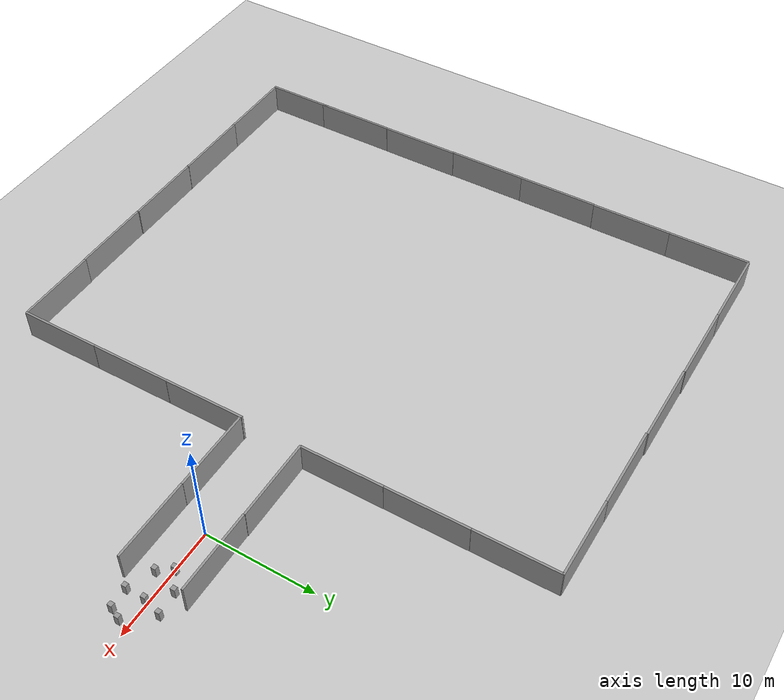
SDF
<sdf version="1.10">
 <world name="obstacle_corridor">
  <model name="ground_plane">
   <static>true</static>
   <link name="link">
    <collision name="collision">
     <geometry><plane><normal>0 0 1</normal><size>100 100</size></plane></geometry>
     <surface>
      <friction><ode><mu>1000</mu><mu2>1000</mu2><slip1>0</slip1><slip2>0</slip2></ode></friction>
     </surface>
    </collision>
    <visual name="visual">
     <cast_shadows>false</cast_shadows>
     <geometry><plane><normal>0 0 1</normal><size>100 100</size></plane></geometry>
     <material>
      <script><uri>file://media/materials/scripts/gazebo.material</uri><name>Gazebo/Grey</name></script>
     </material>
    </visual>
    <inertial>
     <mass>1</mass>
     <inertia><ixx>1</ixx><ixy>0</ixy><ixz>0</ixz><iyy>1</iyy><iyz>0</iyz><izz>1</izz></inertia>
    </inertial>
   </link>
  </model>
  <model name="grey_wall_clone">
   <static>true</static>
   <link name="link">
    <pose>0 0 1.3999999999999999 0 0 0</pose>
    <collision name="collision">
     <geometry><box><size>7.5 0.20000000000000001 2.7999999999999998</size></box></geometry>
    </collision>
    <visual name="visual">
     <cast_shadows>false</cast_shadows>
     <geometry><box><size>7.5 0.20000000000000001 2.7999999999999998</size></box></geometry>
     <material>
      <script><name>Gazebo/Grey</name><uri>file://media/materials/scripts/gazebo.material</uri></script>
     </material>
    </visual>
    <velocity_decay><linear>0</linear><angular>0</angular></velocity_decay>
    <inertial>
     <mass>1</mass>
     <inertia><ixx>1</ixx><ixy>0</ixy><ixz>0</ixz><iyy>1</iyy><iyz>0</iyz><izz>1</izz></inertia>
    </inertial>
   </link>
   <pose>2.1738317012786865 2.7372899055480957 0 0 0 0</pose>
   <static>true</static>
  </model>
  <model name="grey_wall_clone_0">
   <static>true</static>
   <link name="link">
    <pose>0 0 1.3999999999999999 0 0 0</pose>
    <collision name="collision">
     <geometry><box><size>7.5 0.20000000000000001 2.7999999999999998</size></box></geometry>
    </collision>
    <visual name="visual">
     <cast_shadows>false</cast_shadows>
     <geometry><box><size>7.5 0.20000000000000001 2.7999999999999998</size></box></geometry>
     <material>
      <script><name>Gazebo/Grey</name><uri>file://media/materials/scripts/gazebo.material</uri></script>
     </material>
    </visual>
    <velocity_decay><linear>0</linear><angular>0</angular></velocity_decay>
    <inertial>
     <mass>1</mass>
     <inertia><ixx>1</ixx><ixy>0</ixy><ixz>0</ixz><iyy>1</iyy><iyz>0</iyz><izz>1</izz></inertia>
    </inertial>
   </link>
   <pose>2.3360300064086914 -2.9230217933654785 0 0 0 0</pose>
   <static>true</static>
  </model>
  <model name="unit_box_0_clone">
   <static>true</static>
   <pose>5.3421688079833984 1.2851343154907229 0.49999958276748657 2.0000003746328715e-06 1.0000002420493865e-06 -0.00051600009686087638</pose>
   <link name="link">
    <inertial>
     <mass>1</mass>
     <inertia>
      <ixx>0.16666700000000001</ixx>
      <ixy>0</ixy>
      <ixz>0</ixz>
      <iyy>0.16666700000000001</iyy>
      <iyz>0</iyz>
      <izz>0.16666700000000001</izz>
     </inertia>
    </inertial>
    <collision name="collision">
     <geometry><box><size>0.392878 0.42264299999999999 1</size></box></geometry>
    </collision>
    <visual name="visual">
     <geometry><box><size>0.392878 0.42264299999999999 1</size></box></geometry>
     <material>
      <script><name>Gazebo/Grey</name><uri>file://media/materials/scripts/gazebo.material</uri></script>
     </material>
    </visual>
   </link>
   <static>true</static>
  </model>
  <model name="unit_box_0_clone_5_clone_0">
   <static>true</static>
   <pose>7.4106899999999998 1.50068 0.50000100000000003 -1.0000001187337507e-06 -2.0000002376448185e-06 -0.00059700007092639462</pose>
   <link name="link">
    <inertial>
     <mass>1</mass>
     <inertia>
      <ixx>0.16666700000000001</ixx>
      <ixy>0</ixy>
      <ixz>0</ixz>
      <iyy>0.16666700000000001</iyy>
      <iyz>0</iyz>
      <izz>0.16666700000000001</izz>
     </inertia>
    </inertial>
    <collision name="collision">
     <geometry><box><size>0.392878 0.42264299999999999 1</size></box></geometry>
    </collision>
    <visual name="visual">
     <geometry><box><size>0.392878 0.42264299999999999 1</size></box></geometry>
     <material>
      <script><name>Gazebo/Grey</name><uri>file://media/materials/scripts/gazebo.material</uri></script>
     </material>
    </visual>
   </link>
   <static>true</static>
  </model>
  <model name="unit_box_0_clone_5_clone_2">
   <static>true</static>
   <pose>9.1869499999999995 -0.79958200000000001 0.50000100000000003 -2.0000002489220385e-06 1.0000001243659773e-06 -0.00061100007603407161</pose>
   <link name="link">
    <inertial>
     <mass>1</mass>
     <inertia>
      <ixx>0.16666700000000001</ixx>
      <ixy>0</ixy>
      <ixz>0</ixz>
      <iyy>0.16666700000000001</iyy>
      <iyz>0</iyz>
      <izz>0.16666700000000001</izz>
     </inertia>
    </inertial>
    <collision name="collision">
     <geometry><box><size>0.392878 0.42264299999999999 1</size></box></geometry>
    </collision>
    <visual name="visual">
     <geometry><box><size>0.392878 0.42264299999999999 1</size></box></geometry>
     <material>
      <script><name>Gazebo/Grey</name><uri>file://media/materials/scripts/gazebo.material</uri></script>
     </material>
    </visual>
   </link>
   <static>true</static>
  </model>
  <model name="unit_box_0_clone_5_clone_2_clone_1">
   <static>true</static>
   <pose>4.6627099999999997 -1.0221899999999999 0.50000100000000003 -2.0000003720788588e-06 1.000000185865747e-06 -0.00074700013894551096</pose>
   <link name="link">
    <inertial>
     <mass>1</mass>
     <inertia>
      <ixx>0.16666700000000001</ixx>
      <ixy>0</ixy>
      <ixz>0</ixz>
      <iyy>0.16666700000000001</iyy>
      <iyz>0</iyz>
      <izz>0.16666700000000001</izz>
     </inertia>
    </inertial>
    <collision name="collision">
     <geometry><box><size>0.392878 0.42264299999999999 1</size></box></geometry>
    </collision>
    <visual name="visual">
     <geometry><box><size>0.392878 0.42264299999999999 1</size></box></geometry>
     <material>
      <script><name>Gazebo/Grey</name><uri>file://media/materials/scripts/gazebo.material</uri></script>
     </material>
    </visual>
   </link>
   <static>true</static>
  </model>
  <model name="unit_box_0_clone_5_clone_2_clone_2">
   <static>true</static>
   <pose>3.8238189220428471 0.15667788684368128 0.50000017881393422 -2.00000028844333e-06 1.0000002078150583e-06 -0.00072900011429083834</pose>
   <link name="link">
    <inertial>
     <mass>1</mass>
     <inertia>
      <ixx>0.16666700000000001</ixx>
      <ixy>0</ixy>
      <ixz>0</ixz>
      <iyy>0.16666700000000001</iyy>
      <iyz>0</iyz>
      <izz>0.16666700000000001</izz>
     </inertia>
    </inertial>
    <collision name="collision">
     <geometry><box><size>0.392878 0.42264299999999999 1</size></box></geometry>
    </collision>
    <visual name="visual">
     <geometry><box><size>0.392878 0.42264299999999999 1</size></box></geometry>
     <material>
      <script><name>Gazebo/Grey</name><uri>file://media/materials/scripts/gazebo.material</uri></script>
     </material>
    </visual>
   </link>
   <static>true</static>
  </model>
  <model name="unit_box_0_clone_3_clone_3">
   <static>true</static>
   <pose>8.7023399999999995 -1.7966200000000001 0.50000100000000003 2.0000005678250643e-06 1.0000002842401721e-06 -0.00092300026211176772</pose>
   <link name="link">
    <inertial>
     <mass>1</mass>
     <inertia>
      <ixx>0.16666700000000001</ixx>
      <ixy>0</ixy>
      <ixz>0</ixz>
      <iyy>0.16666700000000001</iyy>
      <iyz>0</iyz>
      <izz>0.16666700000000001</izz>
     </inertia>
    </inertial>
    <collision name="collision">
     <geometry><box><size>0.392878 0.42264299999999999 1</size></box></geometry>
    </collision>
    <visual name="visual">
     <geometry><box><size>0.392878 0.42264299999999999 1</size></box></geometry>
     <material>
      <script><name>Gazebo/Grey</name><uri>file://media/materials/scripts/gazebo.material</uri></script>
     </material>
    </visual>
   </link>
   <static>true</static>
  </model>
  <model name="unit_box_0_clone_3_clone_5">
   <static>true</static>
   <pose>6.9551668167114258 -0.18439726531505585 0.49999991059303273 5.0000016584703958e-06 2.0000006920003074e-06 -0.0009740003068479902</pose>
   <link name="link">
    <inertial>
     <mass>1</mass>
     <inertia>
      <ixx>0.16666700000000001</ixx>
      <ixy>0</ixy>
      <ixz>0</ixz>
      <iyy>0.16666700000000001</iyy>
      <iyz>0</iyz>
      <izz>0.16666700000000001</izz>
     </inertia>
    </inertial>
    <collision name="collision">
     <geometry><box><size>0.392878 0.42264299999999999 1</size></box></geometry>
    </collision>
    <visual name="visual">
     <geometry><box><size>0.392878 0.42264299999999999 1</size></box></geometry>
     <material>
      <script><name>Gazebo/Grey</name><uri>file://media/materials/scripts/gazebo.material</uri></script>
     </material>
    </visual>
   </link>
   <static>true</static>
  </model>
  <model name="grey_wall_clone_0_clone_1">
   <static>true</static>
   <link name="link">
    <pose>0 0 1.3999999999999999 0 0 0</pose>
    <collision name="collision">
     <geometry><box><size>7.5 0.20000000000000001 2.7999999999999998</size></box></geometry>
    </collision>
    <visual name="visual">
     <cast_shadows>false</cast_shadows>
     <geometry><box><size>7.5 0.20000000000000001 2.7999999999999998</size></box></geometry>
     <material>
      <script><name>Gazebo/Grey</name><uri>file://media/materials/scripts/gazebo.material</uri></script>
     </material>
    </visual>
    <velocity_decay><linear>0</linear><angular>0</angular></velocity_decay>
    <inertial>
     <mass>1</mass>
     <inertia><ixx>1</ixx><ixy>0</ixy><ixz>0</ixz><iyy>1</iyy><iyz>0</iyz><izz>1</izz></inertia>
    </inertial>
   </link>
   <pose>-5.1656300000000002 -2.9079299999999999 0 0 0 0</pose>
   <static>true</static>
  </model>
  <model name="grey_wall_clone_0_clone_2">
   <static>true</static>
   <link name="link">
    <pose>0 0 1.3999999999999999 0 0 0</pose>
    <collision name="collision">
     <geometry><box><size>7.5 0.20000000000000001 2.7999999999999998</size></box></geometry>
    </collision>
    <visual name="visual">
     <cast_shadows>false</cast_shadows>
     <geometry><box><size>7.5 0.20000000000000001 2.7999999999999998</size></box></geometry>
     <material>
      <script><name>Gazebo/Grey</name><uri>file://media/materials/scripts/gazebo.material</uri></script>
     </material>
    </visual>
    <velocity_decay><linear>0</linear><angular>0</angular></velocity_decay>
    <inertial>
     <mass>1</mass>
     <inertia><ixx>1</ixx><ixy>0</ixy><ixz>0</ixz><iyy>1</iyy><iyz>0</iyz><izz>1</izz></inertia>
    </inertial>
   </link>
   <pose>-5.31351 2.7723599999999999 0 0 0 0</pose>
   <static>true</static>
  </model>
  <model name="grey_wall_clone_0_clone_clone_8_clone_16">
   <static>true</static>
   <link name="link">
    <pose>0 0 1.3999999999999999 0 0 0</pose>
    <collision name="collision">
     <geometry><box><size>7.5 0.20000000000000001 2.7999999999999998</size></box></geometry>
    </collision>
    <visual name="visual">
     <cast_shadows>false</cast_shadows>
     <geometry><box><size>7.5 0.20000000000000001 2.7999999999999998</size></box></geometry>
     <material>
      <script><name>Gazebo/Grey</name><uri>file://media/materials/scripts/gazebo.material</uri></script>
     </material>
    </visual>
    <velocity_decay><linear>0</linear><angular>0</angular></velocity_decay>
    <inertial>
     <mass>1</mass>
     <inertia><ixx>1</ixx><ixy>0</ixy><ixz>0</ixz><iyy>1</iyy><iyz>0</iyz><izz>1</izz></inertia>
    </inertial>
   </link>
   <pose>-9.0006599999999999 -6.52616 0 0 0 -1.5642900000000002</pose>
   <static>true</static>
  </model>
  <model name="grey_wall_clone_0_clone_clone_9_clone">
   <static>true</static>
   <link name="link">
    <pose>0 0 1.3999999999999999 0 0 0</pose>
    <collision name="collision">
     <geometry><box><size>7.5 0.20000000000000001 2.7999999999999998</size></box></geometry>
    </collision>
    <visual name="visual">
     <cast_shadows>false</cast_shadows>
     <geometry><box><size>7.5 0.20000000000000001 2.7999999999999998</size></box></geometry>
     <material>
      <script><name>Gazebo/Grey</name><uri>file://media/materials/scripts/gazebo.material</uri></script>
     </material>
    </visual>
    <velocity_decay><linear>0</linear><angular>0</angular></velocity_decay>
    <inertial>
     <mass>1</mass>
     <inertia><ixx>1</ixx><ixy>0</ixy><ixz>0</ixz><iyy>1</iyy><iyz>0</iyz><izz>1</izz></inertia>
    </inertial>
   </link>
   <pose>-12.839118957519531 25.320600509643555 0 0 0 0</pose>
   <static>true</static>
  </model>
  <model name="grey_wall_clone_0_clone_clone_9_clone_0">
   <static>true</static>
   <link name="link">
    <pose>0 0 1.3999999999999999 0 0 0</pose>
    <collision name="collision">
     <geometry><box><size>7.5 0.20000000000000001 2.7999999999999998</size></box></geometry>
    </collision>
    <visual name="visual">
     <cast_shadows>false</cast_shadows>
     <geometry><box><size>7.5 0.20000000000000001 2.7999999999999998</size></box></geometry>
     <material>
      <script><name>Gazebo/Grey</name><uri>file://media/materials/scripts/gazebo.material</uri></script>
     </material>
    </visual>
    <velocity_decay><linear>0</linear><angular>0</angular></velocity_decay>
    <inertial>
     <mass>1</mass>
     <inertia><ixx>1</ixx><ixy>0</ixy><ixz>0</ixz><iyy>1</iyy><iyz>0</iyz><izz>1</izz></inertia>
    </inertial>
   </link>
   <pose>-20.260299682617188 25.326641082763672 0 0 0 0</pose>
   <static>true</static>
  </model>
  <model name="grey_wall_clone_0_clone_clone_9_clone_1">
   <static>true</static>
   <link name="link">
    <pose>0 0 1.3999999999999999 0 0 0</pose>
    <collision name="collision">
     <geometry><box><size>7.5 0.20000000000000001 2.7999999999999998</size></box></geometry>
    </collision>
    <visual name="visual">
     <cast_shadows>false</cast_shadows>
     <geometry><box><size>7.5 0.20000000000000001 2.7999999999999998</size></box></geometry>
     <material>
      <script><name>Gazebo/Grey</name><uri>file://media/materials/scripts/gazebo.material</uri></script>
     </material>
    </visual>
    <velocity_decay><linear>0</linear><angular>0</angular></velocity_decay>
    <inertial>
     <mass>1</mass>
     <inertia><ixx>1</ixx><ixy>0</ixy><ixz>0</ixz><iyy>1</iyy><iyz>0</iyz><izz>1</izz></inertia>
    </inertial>
   </link>
   <pose>-27.758800506591797 25.409584045410156 0 0 0 0</pose>
   <static>true</static>
  </model>
  <model name="grey_wall_clone_0_clone_clone_9_clone_2">
   <static>true</static>
   <link name="link">
    <pose>0 0 1.3999999999999999 0 0 0</pose>
    <collision name="collision">
     <geometry><box><size>7.5 0.20000000000000001 2.7999999999999998</size></box></geometry>
    </collision>
    <visual name="visual">
     <cast_shadows>false</cast_shadows>
     <geometry><box><size>7.5 0.20000000000000001 2.7999999999999998</size></box></geometry>
     <material>
      <script><name>Gazebo/Grey</name><uri>file://media/materials/scripts/gazebo.material</uri></script>
     </material>
    </visual>
    <velocity_decay><linear>0</linear><angular>0</angular></velocity_decay>
    <inertial>
     <mass>1</mass>
     <inertia><ixx>1</ixx><ixy>0</ixy><ixz>0</ixz><iyy>1</iyy><iyz>0</iyz><izz>1</izz></inertia>
    </inertial>
   </link>
   <pose>-35.270698547363281 25.455741882324219 0 0 0 0</pose>
   <static>true</static>
  </model>
  <model name="grey_wall_clone_0_clone_clone_9_clone_3">
   <static>true</static>
   <link name="link">
    <pose>0 0 1.3999999999999999 0 0 0</pose>
    <collision name="collision">
     <geometry><box><size>7.5 0.20000000000000001 2.7999999999999998</size></box></geometry>
    </collision>
    <visual name="visual">
     <cast_shadows>false</cast_shadows>
     <geometry><box><size>7.5 0.20000000000000001 2.7999999999999998</size></box></geometry>
     <material>
      <script><name>Gazebo/Grey</name><uri>file://media/materials/scripts/gazebo.material</uri></script>
     </material>
    </visual>
    <velocity_decay><linear>0</linear><angular>0</angular></velocity_decay>
    <inertial>
     <mass>1</mass>
     <inertia><ixx>1</ixx><ixy>0</ixy><ixz>0</ixz><iyy>1</iyy><iyz>0</iyz><izz>1</izz></inertia>
    </inertial>
   </link>
   <pose>-12.71590518951416 -25.245800018310547 0 0 0 0</pose>
   <static>true</static>
  </model>
  <model name="grey_wall_clone_0_clone_clone_9_clone_4">
   <static>true</static>
   <link name="link">
    <pose>0 0 1.3999999999999999 0 0 0</pose>
    <collision name="collision">
     <geometry><box><size>7.5 0.20000000000000001 2.7999999999999998</size></box></geometry>
    </collision>
    <visual name="visual">
     <cast_shadows>false</cast_shadows>
     <geometry><box><size>7.5 0.20000000000000001 2.7999999999999998</size></box></geometry>
     <material>
      <script><name>Gazebo/Grey</name><uri>file://media/materials/scripts/gazebo.material</uri></script>
     </material>
    </visual>
    <velocity_decay><linear>0</linear><angular>0</angular></velocity_decay>
    <inertial>
     <mass>1</mass>
     <inertia><ixx>1</ixx><ixy>0</ixy><ixz>0</ixz><iyy>1</iyy><iyz>0</iyz><izz>1</izz></inertia>
    </inertial>
   </link>
   <pose>-20.126399993896484 -25.291999816894531 0 0 0 0</pose>
   <static>true</static>
  </model>
  <model name="grey_wall_clone_0_clone_clone_9_clone_5">
   <static>true</static>
   <link name="link">
    <pose>0 0 1.3999999999999999 0 0 0</pose>
    <collision name="collision">
     <geometry><box><size>7.5 0.20000000000000001 2.7999999999999998</size></box></geometry>
    </collision>
    <visual name="visual">
     <cast_shadows>false</cast_shadows>
     <geometry><box><size>7.5 0.20000000000000001 2.7999999999999998</size></box></geometry>
     <material>
      <script><name>Gazebo/Grey</name><uri>file://media/materials/scripts/gazebo.material</uri></script>
     </material>
    </visual>
    <velocity_decay><linear>0</linear><angular>0</angular></velocity_decay>
    <inertial>
     <mass>1</mass>
     <inertia><ixx>1</ixx><ixy>0</ixy><ixz>0</ixz><iyy>1</iyy><iyz>0</iyz><izz>1</izz></inertia>
    </inertial>
   </link>
   <pose>-27.682783126831055 -25.268400192260742 0 0 0 0</pose>
   <static>true</static>
  </model>
  <model name="grey_wall_clone_0_clone_clone_9_clone_6">
   <static>true</static>
   <link name="link">
    <pose>0 0 1.3999999999999999 0 0 0</pose>
    <collision name="collision">
     <geometry><box><size>7.5 0.20000000000000001 2.7999999999999998</size></box></geometry>
    </collision>
    <visual name="visual">
     <cast_shadows>false</cast_shadows>
     <geometry><box><size>7.5 0.20000000000000001 2.7999999999999998</size></box></geometry>
     <material>
      <script><name>Gazebo/Grey</name><uri>file://media/materials/scripts/gazebo.material</uri></script>
     </material>
    </visual>
    <velocity_decay><linear>0</linear><angular>0</angular></velocity_decay>
    <inertial>
     <mass>1</mass>
     <inertia><ixx>1</ixx><ixy>0</ixy><ixz>0</ixz><iyy>1</iyy><iyz>0</iyz><izz>1</izz></inertia>
    </inertial>
   </link>
   <pose>-35.210391998291016 -25.270299911499023 0 0 0 0</pose>
   <static>true</static>
  </model>
  <model name="grey_wall_clone_0_clone_clone_9_clone_0_clone">
   <static>true</static>
   <link name="link">
    <pose>0 0 1.3999999999999999 0 0 0</pose>
    <collision name="collision">
     <geometry><box><size>7.5 0.20000000000000001 2.7999999999999998</size></box></geometry>
    </collision>
    <visual name="visual">
     <cast_shadows>false</cast_shadows>
     <geometry><box><size>7.5 0.20000000000000001 2.7999999999999998</size></box></geometry>
     <material>
      <script><name>Gazebo/Grey</name><uri>file://media/materials/scripts/gazebo.material</uri></script>
     </material>
    </visual>
    <velocity_decay><linear>0</linear><angular>0</angular></velocity_decay>
    <inertial>
     <mass>1</mass>
     <inertia><ixx>1</ixx><ixy>0</ixy><ixz>0</ixz><iyy>1</iyy><iyz>0</iyz><izz>1</izz></inertia>
    </inertial>
   </link>
   <pose>-42.69329833984375 25.460783004760742 0 0 0 0</pose>
   <static>true</static>
  </model>
  <model name="grey_wall_clone_0_clone_clone_9_clone_0_clone_0">
   <static>true</static>
   <link name="link">
    <pose>0 0 1.3999999999999999 0 0 0</pose>
    <collision name="collision">
     <geometry><box><size>7.5 0.20000000000000001 2.7999999999999998</size></box></geometry>
    </collision>
    <visual name="visual">
     <cast_shadows>false</cast_shadows>
     <geometry><box><size>7.5 0.20000000000000001 2.7999999999999998</size></box></geometry>
     <material>
      <script><name>Gazebo/Grey</name><uri>file://media/materials/scripts/gazebo.material</uri></script>
     </material>
    </visual>
    <velocity_decay><linear>0</linear><angular>0</angular></velocity_decay>
    <inertial>
     <mass>1</mass>
     <inertia><ixx>1</ixx><ixy>0</ixy><ixz>0</ixz><iyy>1</iyy><iyz>0</iyz><izz>1</izz></inertia>
    </inertial>
   </link>
   <pose>-42.338699340820312 -25.282276153564453 0 0 0 0</pose>
   <static>true</static>
  </model>
  <model name="unit_box_0_clone_5_clone_1_clone_15_3">
   <static>true</static>
   <pose>6.9214428863238542 -1.9536039244819126 0.5 1.0000000271555768e-06 -1.0000000632309049e-06 -0.00028600000715498132</pose>
   <link name="link">
    <inertial>
     <mass>1</mass>
     <inertia>
      <ixx>0.16666700000000001</ixx>
      <ixy>0</ixy>
      <ixz>0</ixz>
      <iyy>0.16666700000000001</iyy>
      <iyz>0</iyz>
      <izz>0.16666700000000001</izz>
     </inertia>
    </inertial>
    <collision name="collision">
     <geometry><box><size>0.392878 0.42264299999999999 1</size></box></geometry>
    </collision>
    <visual name="visual">
     <geometry><box><size>0.392878 0.42264299999999999 1</size></box></geometry>
     <material>
      <script><name>Gazebo/Grey</name><uri>file://media/materials/scripts/gazebo.material</uri></script>
     </material>
    </visual>
   </link>
   <static>true</static>
  </model>
  <model name="grey_wall_clone_0_clone_clone_8_clone_16_1">
   <static>true</static>
   <link name="link">
    <pose>0 0 1.3999999999999999 0 0 0</pose>
    <collision name="collision">
     <geometry><box><size>7.5 0.20000000000000001 2.7999999999999998</size></box></geometry>
    </collision>
    <visual name="visual">
     <cast_shadows>false</cast_shadows>
     <geometry><box><size>7.5 0.20000000000000001 2.7999999999999998</size></box></geometry>
     <material>
      <script><name>Gazebo/Grey</name><uri>file://media/materials/scripts/gazebo.material</uri></script>
     </material>
    </visual>
    <velocity_decay><linear>0</linear><angular>0</angular></velocity_decay>
    <inertial>
     <mass>1</mass>
     <inertia><ixx>1</ixx><ixy>0</ixy><ixz>0</ixz><iyy>1</iyy><iyz>0</iyz><izz>1</izz></inertia>
    </inertial>
   </link>
   <pose>-8.9469402997151484 -14.038858497014198 0 0 0 -1.5642899622558528</pose>
   <static>true</static>
  </model>
  <model name="grey_wall_clone_0_clone_clone_8_clone_16_2">
   <static>true</static>
   <link name="link">
    <pose>0 0 1.3999999999999999 0 0 0</pose>
    <collision name="collision">
     <geometry><box><size>7.5 0.20000000000000001 2.7999999999999998</size></box></geometry>
    </collision>
    <visual name="visual">
     <cast_shadows>false</cast_shadows>
     <geometry><box><size>7.5 0.20000000000000001 2.7999999999999998</size></box></geometry>
     <material>
      <script><name>Gazebo/Grey</name><uri>file://media/materials/scripts/gazebo.material</uri></script>
     </material>
    </visual>
    <velocity_decay><linear>0</linear><angular>0</angular></velocity_decay>
    <inertial>
     <mass>1</mass>
     <inertia><ixx>1</ixx><ixy>0</ixy><ixz>0</ixz><iyy>1</iyy><iyz>0</iyz><izz>1</izz></inertia>
    </inertial>
   </link>
   <pose>-8.8969367440075739 -21.55447817966995 0 0 0 -1.5642899622558528</pose>
   <static>true</static>
  </model>
  <model name="grey_wall_clone_0_clone_clone_8_clone_16_1_1">
   <static>true</static>
   <link name="link">
    <pose>0 0 1.3999999999999999 0 0 0</pose>
    <collision name="collision">
     <geometry><box><size>7.5 0.20000000000000001 2.7999999999999998</size></box></geometry>
    </collision>
    <visual name="visual">
     <cast_shadows>false</cast_shadows>
     <geometry><box><size>7.5 0.20000000000000001 2.7999999999999998</size></box></geometry>
     <material>
      <script><name>Gazebo/Grey</name><uri>file://media/materials/scripts/gazebo.material</uri></script>
     </material>
    </visual>
    <velocity_decay><linear>0</linear><angular>0</angular></velocity_decay>
    <inertial>
     <mass>1</mass>
     <inertia><ixx>1</ixx><ixy>0</ixy><ixz>0</ixz><iyy>1</iyy><iyz>0</iyz><izz>1</izz></inertia>
    </inertial>
   </link>
   <pose>-9.0227649843054394 6.5644771857672293 0 0 0 -1.5642899622558528</pose>
   <static>true</static>
  </model>
  <model name="grey_wall_clone_0_clone_clone_8_clone_16_1_2">
   <static>true</static>
   <link name="link">
    <pose>0 0 1.3999999999999999 0 0 0</pose>
    <collision name="collision">
     <geometry><box><size>7.5 0.20000000000000001 2.7999999999999998</size></box></geometry>
    </collision>
    <visual name="visual">
     <cast_shadows>false</cast_shadows>
     <geometry><box><size>7.5 0.20000000000000001 2.7999999999999998</size></box></geometry>
     <material>
      <script><name>Gazebo/Grey</name><uri>file://media/materials/scripts/gazebo.material</uri></script>
     </material>
    </visual>
    <velocity_decay><linear>0</linear><angular>0</angular></velocity_decay>
    <inertial>
     <mass>1</mass>
     <inertia><ixx>1</ixx><ixy>0</ixy><ixz>0</ixz><iyy>1</iyy><iyz>0</iyz><izz>1</izz></inertia>
    </inertial>
   </link>
   <pose>-9.0737635693201959 14.0799959032069 0 0 0 -1.5642899622558528</pose>
   <static>true</static>
  </model>
  <model name="grey_wall_clone_0_clone_clone_8_clone_16_1_3">
   <static>true</static>
   <link name="link">
    <pose>0 0 1.3999999999999999 0 0 0</pose>
    <collision name="collision">
     <geometry><box><size>7.5 0.20000000000000001 2.7999999999999998</size></box></geometry>
    </collision>
    <visual name="visual">
     <cast_shadows>false</cast_shadows>
     <geometry><box><size>7.5 0.20000000000000001 2.7999999999999998</size></box></geometry>
     <material>
      <script><name>Gazebo/Grey</name><uri>file://media/materials/scripts/gazebo.material</uri></script>
     </material>
    </visual>
    <velocity_decay><linear>0</linear><angular>0</angular></velocity_decay>
    <inertial>
     <mass>1</mass>
     <inertia><ixx>1</ixx><ixy>0</ixy><ixz>0</ixz><iyy>1</iyy><iyz>0</iyz><izz>1</izz></inertia>
    </inertial>
   </link>
   <pose>-9.1267860883567096 21.60129062338709 0 0 0 -1.5642899622558528</pose>
   <static>true</static>
  </model>
  <model name="grey_wall_clone_0_clone_clone_8_clone_16_1_1_1">
   <static>true</static>
   <link name="link">
    <pose>0 0 1.3999999999999999 0 0 0</pose>
    <collision name="collision">
     <geometry><box><size>7.5 0.20000000000000001 2.7999999999999998</size></box></geometry>
    </collision>
    <visual name="visual">
     <cast_shadows>false</cast_shadows>
     <geometry><box><size>7.5 0.20000000000000001 2.7999999999999998</size></box></geometry>
     <material>
      <script><name>Gazebo/Grey</name><uri>file://media/materials/scripts/gazebo.material</uri></script>
     </material>
    </visual>
    <velocity_decay><linear>0</linear><angular>0</angular></velocity_decay>
    <inertial>
     <mass>1</mass>
     <inertia><ixx>1</ixx><ixy>0</ixy><ixz>0</ixz><iyy>1</iyy><iyz>0</iyz><izz>1</izz></inertia>
    </inertial>
   </link>
   <pose>-46.464664451642783 21.719385627362325 0 0 0 -1.5642899622558528</pose>
   <static>true</static>
  </model>
  <model name="grey_wall_clone_0_clone_clone_8_clone_16_1_1_2">
   <static>true</static>
   <link name="link">
    <pose>0 0 1.3999999999999999 0 0 0</pose>
    <collision name="collision">
     <geometry><box><size>7.5 0.20000000000000001 2.7999999999999998</size></box></geometry>
    </collision>
    <visual name="visual">
     <cast_shadows>false</cast_shadows>
     <geometry><box><size>7.5 0.20000000000000001 2.7999999999999998</size></box></geometry>
     <material>
      <script><name>Gazebo/Grey</name><uri>file://media/materials/scripts/gazebo.material</uri></script>
     </material>
    </visual>
    <velocity_decay><linear>0</linear><angular>0</angular></velocity_decay>
    <inertial>
     <mass>1</mass>
     <inertia><ixx>1</ixx><ixy>0</ixy><ixz>0</ixz><iyy>1</iyy><iyz>0</iyz><izz>1</izz></inertia>
    </inertial>
   </link>
   <pose>-46.419384063304058 14.218219053352684 0 0 0 -1.5642899622558528</pose>
   <static>true</static>
  </model>
  <model name="grey_wall_clone_0_clone_clone_8_clone_16_1_1_3">
   <static>true</static>
   <link name="link">
    <pose>0 0 1.3999999999999999 0 0 0</pose>
    <collision name="collision">
     <geometry><box><size>7.5 0.20000000000000001 2.7999999999999998</size></box></geometry>
    </collision>
    <visual name="visual">
     <cast_shadows>false</cast_shadows>
     <geometry><box><size>7.5 0.20000000000000001 2.7999999999999998</size></box></geometry>
     <material>
      <script><name>Gazebo/Grey</name><uri>file://media/materials/scripts/gazebo.material</uri></script>
     </material>
    </visual>
    <velocity_decay><linear>0</linear><angular>0</angular></velocity_decay>
    <inertial>
     <mass>1</mass>
     <inertia><ixx>1</ixx><ixy>0</ixy><ixz>0</ixz><iyy>1</iyy><iyz>0</iyz><izz>1</izz></inertia>
    </inertial>
   </link>
   <pose>-46.417931963082864 6.6877285110190883 0 0 0 -1.5642899622558528</pose>
   <static>true</static>
  </model>
  <model name="grey_wall_clone_0_clone_clone_8_clone_16_1_1_4">
   <static>true</static>
   <link name="link">
    <pose>0 0 1.3999999999999999 0 0 0</pose>
    <collision name="collision">
     <geometry><box><size>7.5 0.20000000000000001 2.7999999999999998</size></box></geometry>
    </collision>
    <visual name="visual">
     <cast_shadows>false</cast_shadows>
     <geometry><box><size>7.5 0.20000000000000001 2.7999999999999998</size></box></geometry>
     <material>
      <script><name>Gazebo/Grey</name><uri>file://media/materials/scripts/gazebo.material</uri></script>
     </material>
    </visual>
    <velocity_decay><linear>0</linear><angular>0</angular></velocity_decay>
    <inertial>
     <mass>1</mass>
     <inertia><ixx>1</ixx><ixy>0</ixy><ixz>0</ixz><iyy>1</iyy><iyz>0</iyz><izz>1</izz></inertia>
    </inertial>
   </link>
   <pose>-46.380338046242635 -0.79780118088285912 0 0 0 -1.5642899622558528</pose>
   <static>true</static>
  </model>
  <model name="grey_wall_clone_0_clone_clone_8_clone_16_1_1_5">
   <static>true</static>
   <link name="link">
    <pose>0 0 1.3999999999999999 0 0 0</pose>
    <collision name="collision">
     <geometry><box><size>7.5 0.20000000000000001 2.7999999999999998</size></box></geometry>
    </collision>
    <visual name="visual">
     <cast_shadows>false</cast_shadows>
     <geometry><box><size>7.5 0.20000000000000001 2.7999999999999998</size></box></geometry>
     <material>
      <script><name>Gazebo/Grey</name><uri>file://media/materials/scripts/gazebo.material</uri></script>
     </material>
    </visual>
    <velocity_decay><linear>0</linear><angular>0</angular></velocity_decay>
    <inertial>
     <mass>1</mass>
     <inertia><ixx>1</ixx><ixy>0</ixy><ixz>0</ixz><iyy>1</iyy><iyz>0</iyz><izz>1</izz></inertia>
    </inertial>
   </link>
   <pose>-46.294258282135964 -8.1566762805550308 0 0 0 -1.5642899622558528</pose>
   <static>true</static>
  </model>
  <model name="grey_wall_clone_0_clone_clone_8_clone_16_1_1_6">
   <static>true</static>
   <link name="link">
    <pose>0 0 1.3999999999999999 0 0 0</pose>
    <collision name="collision">
     <geometry><box><size>7.5 0.20000000000000001 2.7999999999999998</size></box></geometry>
    </collision>
    <visual name="visual">
     <cast_shadows>false</cast_shadows>
     <geometry><box><size>7.5 0.20000000000000001 2.7999999999999998</size></box></geometry>
     <material>
      <script><name>Gazebo/Grey</name><uri>file://media/materials/scripts/gazebo.material</uri></script>
     </material>
    </visual>
    <velocity_decay><linear>0</linear><angular>0</angular></velocity_decay>
    <inertial>
     <mass>1</mass>
     <inertia><ixx>1</ixx><ixy>0</ixy><ixz>0</ixz><iyy>1</iyy><iyz>0</iyz><izz>1</izz></inertia>
    </inertial>
   </link>
   <pose>-46.259667443586487 -15.689360133507314 0 0 0 -1.5642899622558528</pose>
   <static>true</static>
  </model>
  <model name="grey_wall_clone_0_clone_clone_8_clone_16_1_1_7">
   <static>true</static>
   <link name="link">
    <pose>0 0 1.3999999999999999 0 0 0</pose>
    <collision name="collision">
     <geometry><box><size>7.5 0.20000000000000001 2.7999999999999998</size></box></geometry>
    </collision>
    <visual name="visual">
     <cast_shadows>false</cast_shadows>
     <geometry><box><size>7.5 0.20000000000000001 2.7999999999999998</size></box></geometry>
     <material>
      <script><name>Gazebo/Grey</name><uri>file://media/materials/scripts/gazebo.material</uri></script>
     </material>
    </visual>
    <velocity_decay><linear>0</linear><angular>0</angular></velocity_decay>
    <inertial>
     <mass>1</mass>
     <inertia><ixx>1</ixx><ixy>0</ixy><ixz>0</ixz><iyy>1</iyy><iyz>0</iyz><izz>1</izz></inertia>
    </inertial>
   </link>
   <pose>-46.230088830104897 -21.641751122985895 0 0 0 -1.5642899622558528</pose>
   <static>true</static>
  </model>
 </world>
</sdf>
